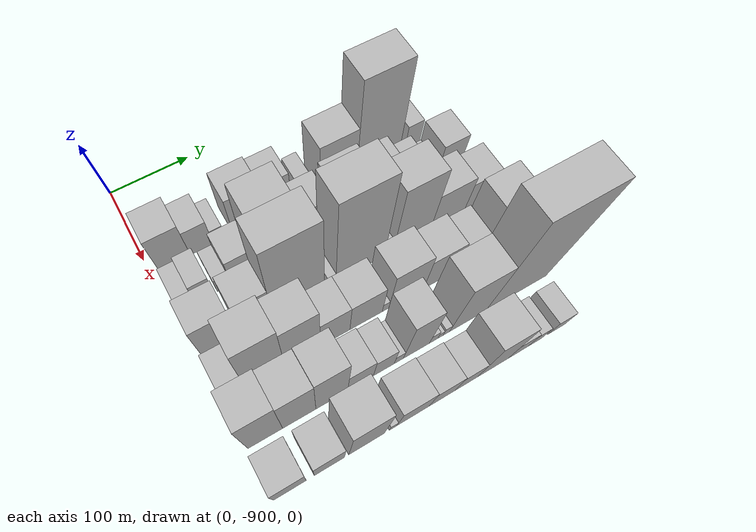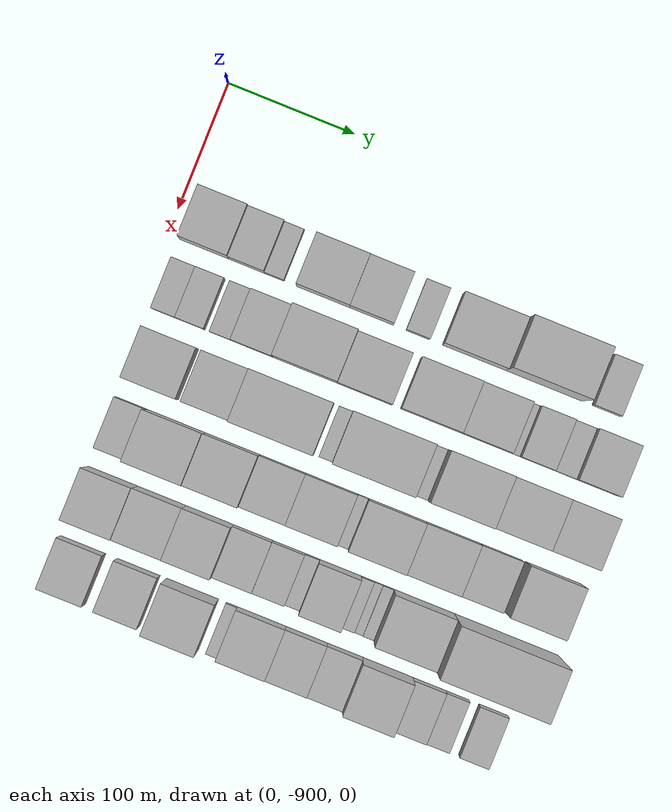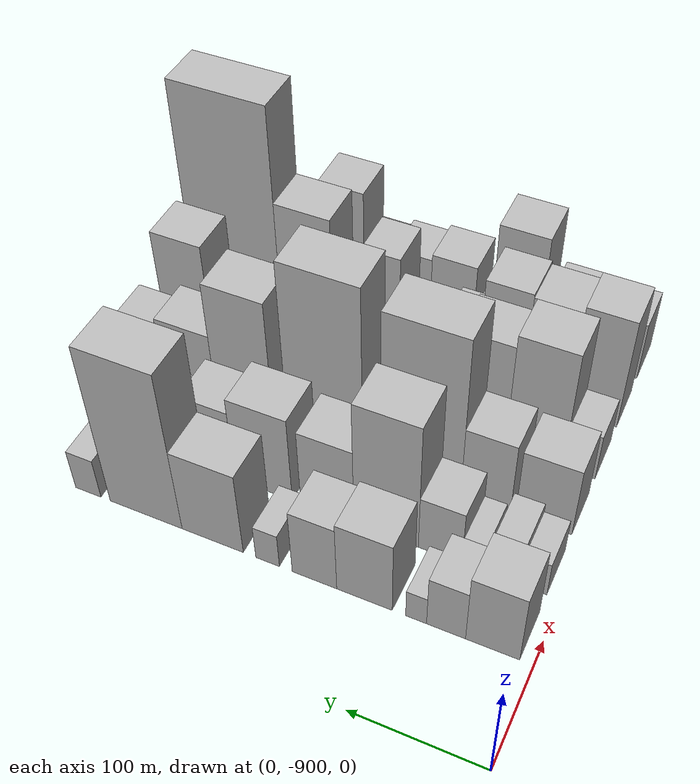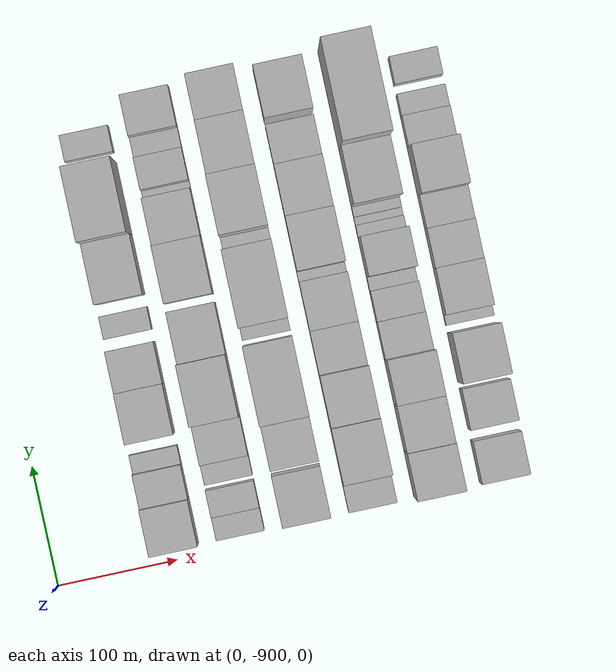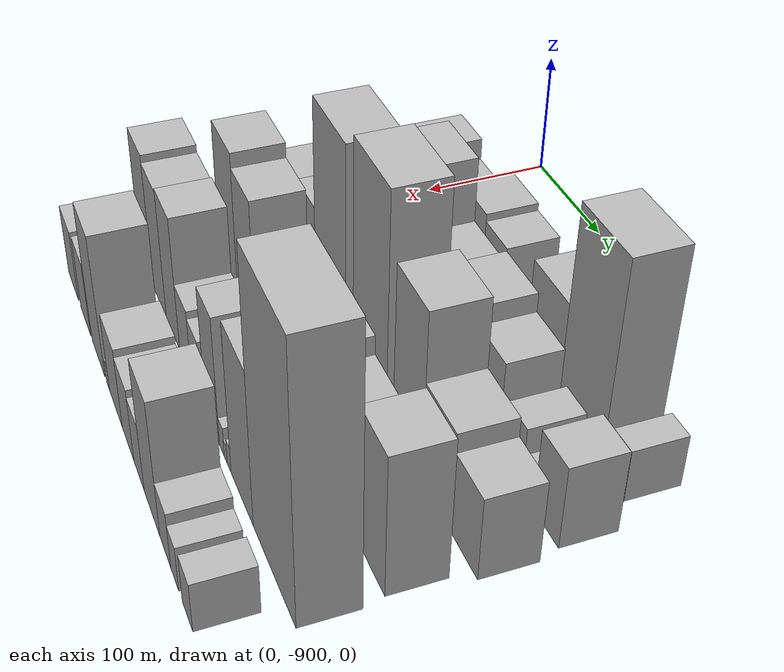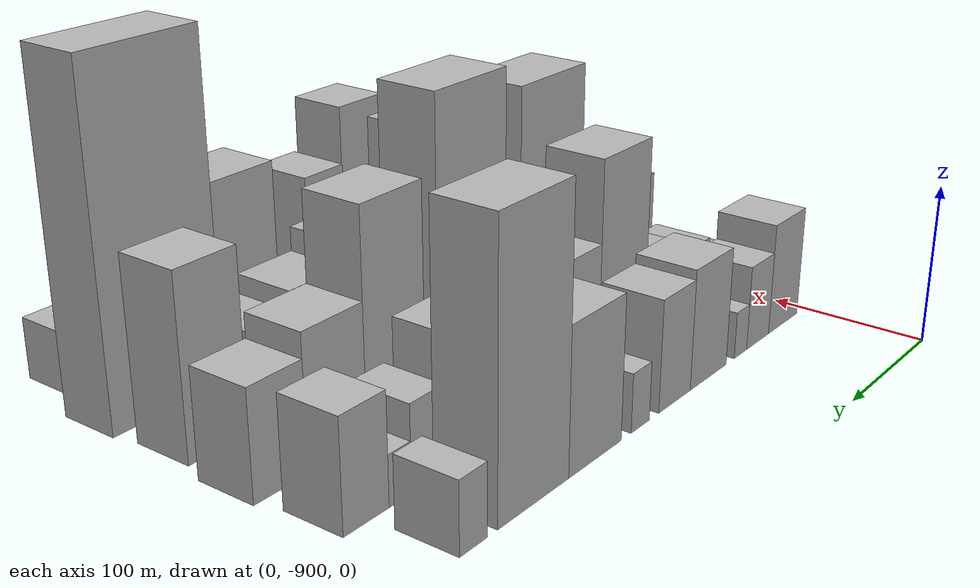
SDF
<sdf version="1.6">
 <world name="default">
  <model name="building_1">
   <static>1</static>
   <pose>100.0000 -870.6648 0 0.000000 0.000000 0.000000</pose>
   <link name="link">
    <pose>0 0 36.00 0 0 0</pose>
    <collision name="collision"><geometry><box><size>40.0000 38.6703 72.0000</size></box></geometry></collision>
    <visual name="visual">
     <cast_shadows>0</cast_shadows>
     <geometry><box><size>40.0000 38.6703 72.0000</size></box></geometry>
     <material>
      <script>
       <uri>model://HANNAS_wall/materials/scripts</uri>
       <uri>model://HANNAS_wall/materials/textures</uri>
       <name>vrc/HANNAS_wall</name>
      </script>
     </material>
    </visual>
   </link>
  </model>
  <model name="building_2">
   <static>1</static>
   <pose>100.0000 -837.1453 0 0.000000 0.000000 0.000000</pose>
   <link name="link">
    <pose>0 0 27.00 0 0 0</pose>
    <collision name="collision"><geometry><box><size>40.0000 28.3688 54.0000</size></box></geometry></collision>
    <visual name="visual">
     <cast_shadows>0</cast_shadows>
     <geometry><box><size>40.0000 28.3688 54.0000</size></box></geometry>
     <material>
      <script>
       <uri>model://HANNAS_wall/materials/scripts</uri>
       <uri>model://HANNAS_wall/materials/textures</uri>
       <name>vrc/HANNAS_wall</name>
      </script>
     </material>
    </visual>
   </link>
  </model>
  <model name="building_3">
   <static>1</static>
   <pose>100.0000 -815.2428 0 0.000000 0.000000 0.000000</pose>
   <link name="link">
    <pose>0 0 15.00 0 0 0</pose>
    <collision name="collision"><geometry><box><size>40.0000 15.4361 30.0000</size></box></geometry></collision>
    <visual name="visual">
     <cast_shadows>0</cast_shadows>
     <geometry><box><size>40.0000 15.4361 30.0000</size></box></geometry>
     <material>
      <script>
       <uri>model://HANNAS_wall/materials/scripts</uri>
       <uri>model://HANNAS_wall/materials/textures</uri>
       <name>vrc/HANNAS_wall</name>
      </script>
     </material>
    </visual>
   </link>
  </model>
  <model name="building_4">
   <static>1</static>
   <pose>100.0000 -776.5197 0 0.000000 0.000000 0.000000</pose>
   <link name="link">
    <pose>0 0 37.50 0 0 0</pose>
    <collision name="collision"><geometry><box><size>40.0000 42.0102 75.0000</size></box></geometry></collision>
    <visual name="visual">
     <cast_shadows>0</cast_shadows>
     <geometry><box><size>40.0000 42.0102 75.0000</size></box></geometry>
     <material>
      <script>
       <uri>model://HANNAS_wall/materials/scripts</uri>
       <uri>model://HANNAS_wall/materials/textures</uri>
       <name>vrc/HANNAS_wall</name>
      </script>
     </material>
    </visual>
   </link>
  </model>
  <model name="building_5">
   <static>1</static>
   <pose>100.0000 -738.2272 0 0.000000 0.000000 0.000000</pose>
   <link name="link">
    <pose>0 0 34.50 0 0 0</pose>
    <collision name="collision"><geometry><box><size>40.0000 34.5749 69.0000</size></box></geometry></collision>
    <visual name="visual">
     <cast_shadows>0</cast_shadows>
     <geometry><box><size>40.0000 34.5749 69.0000</size></box></geometry>
     <material>
      <script>
       <uri>model://HANNAS_wall/materials/scripts</uri>
       <uri>model://HANNAS_wall/materials/textures</uri>
       <name>vrc/HANNAS_wall</name>
      </script>
     </material>
    </visual>
   </link>
  </model>
  <model name="building_6">
   <static>1</static>
   <pose>100.0000 -701.5456 0 0.000000 0.000000 0.000000</pose>
   <link name="link">
    <pose>0 0 18.00 0 0 0</pose>
    <collision name="collision"><geometry><box><size>40.0000 18.7882 36.0000</size></box></geometry></collision>
    <visual name="visual">
     <cast_shadows>0</cast_shadows>
     <geometry><box><size>40.0000 18.7882 36.0000</size></box></geometry>
     <material>
      <script>
       <uri>model://HANNAS_wall/materials/scripts</uri>
       <uri>model://HANNAS_wall/materials/textures</uri>
       <name>vrc/HANNAS_wall</name>
      </script>
     </material>
    </visual>
   </link>
  </model>
  <model name="building_7">
   <static>1</static>
   <pose>100.0000 -657.1755 0 0.000000 0.000000 0.000000</pose>
   <link name="link">
    <pose>0 0 43.50 0 0 0</pose>
    <collision name="collision"><geometry><box><size>40.0000 49.9519 87.0000</size></box></geometry></collision>
    <visual name="visual">
     <cast_shadows>0</cast_shadows>
     <geometry><box><size>40.0000 49.9519 87.0000</size></box></geometry>
     <material>
      <script>
       <uri>model://HANNAS_wall/materials/scripts</uri>
       <uri>model://HANNAS_wall/materials/textures</uri>
       <name>vrc/HANNAS_wall</name>
      </script>
     </material>
    </visual>
   </link>
  </model>
  <model name="building_8">
   <static>1</static>
   <pose>100.0000 -601.8384 0 0.000000 0.000000 0.000000</pose>
   <link name="link">
    <pose>0 0 82.50 0 0 0</pose>
    <collision name="collision"><geometry><box><size>40.0000 60.7224 165.0000</size></box></geometry></collision>
    <visual name="visual">
     <cast_shadows>0</cast_shadows>
     <geometry><box><size>40.0000 60.7224 165.0000</size></box></geometry>
     <material>
      <script>
       <uri>model://HANNAS_wall/materials/scripts</uri>
       <uri>model://HANNAS_wall/materials/textures</uri>
       <name>vrc/HANNAS_wall</name>
      </script>
     </material>
    </visual>
   </link>
  </model>
  <model name="building_9">
   <static>1</static>
   <pose>100.0000 -552.5471 0 0.000000 0.000000 0.000000</pose>
   <link name="link">
    <pose>0 0 21.00 0 0 0</pose>
    <collision name="collision"><geometry><box><size>40.0000 21.8601 42.0000</size></box></geometry></collision>
    <visual name="visual">
     <cast_shadows>0</cast_shadows>
     <geometry><box><size>40.0000 21.8601 42.0000</size></box></geometry>
     <material>
      <script>
       <uri>model://HANNAS_wall/materials/scripts</uri>
       <uri>model://HANNAS_wall/materials/textures</uri>
       <name>vrc/HANNAS_wall</name>
      </script>
     </material>
    </visual>
   </link>
  </model>
  <model name="building_54">
   <static>1</static>
   <pose>155.0000 -880.3482 0 0.000000 0.000000 0.000000</pose>
   <link name="link">
    <pose>0 0 18.00 0 0 0</pose>
    <collision name="collision"><geometry><box><size>40.0000 19.3035 36.0000</size></box></geometry></collision>
    <visual name="visual">
     <cast_shadows>0</cast_shadows>
     <geometry><box><size>40.0000 19.3035 36.0000</size></box></geometry>
     <material>
      <script>
       <uri>model://HANNAS_wall/materials/scripts</uri>
       <uri>model://HANNAS_wall/materials/textures</uri>
       <name>vrc/HANNAS_wall</name>
      </script>
     </material>
    </visual>
   </link>
  </model>
  <model name="building_55">
   <static>1</static>
   <pose>155.0000 -859.4224 0 0.000000 0.000000 0.000000</pose>
   <link name="link">
    <pose>0 0 22.50 0 0 0</pose>
    <collision name="collision"><geometry><box><size>40.0000 22.5482 45.0000</size></box></geometry></collision>
    <visual name="visual">
     <cast_shadows>0</cast_shadows>
     <geometry><box><size>40.0000 22.5482 45.0000</size></box></geometry>
     <material>
      <script>
       <uri>model://HANNAS_wall/materials/scripts</uri>
       <uri>model://HANNAS_wall/materials/textures</uri>
       <name>vrc/HANNAS_wall</name>
      </script>
     </material>
    </visual>
   </link>
  </model>
  <model name="building_56">
   <static>1</static>
   <pose>155.0000 -835.6119 0 0.000000 0.000000 0.000000</pose>
   <link name="link">
    <pose>0 0 15.00 0 0 0</pose>
    <collision name="collision"><geometry><box><size>40.0000 17.0728 30.0000</size></box></geometry></collision>
    <visual name="visual">
     <cast_shadows>0</cast_shadows>
     <geometry><box><size>40.0000 17.0728 30.0000</size></box></geometry>
     <material>
      <script>
       <uri>model://HANNAS_wall/materials/scripts</uri>
       <uri>model://HANNAS_wall/materials/textures</uri>
       <name>vrc/HANNAS_wall</name>
      </script>
     </material>
    </visual>
   </link>
  </model>
  <model name="building_57">
   <static>1</static>
   <pose>155.0000 -810.3334 0 0.000000 0.000000 0.000000</pose>
   <link name="link">
    <pose>0 0 28.50 0 0 0</pose>
    <collision name="collision"><geometry><box><size>40.0000 33.4842 57.0000</size></box></geometry></collision>
    <visual name="visual">
     <cast_shadows>0</cast_shadows>
     <geometry><box><size>40.0000 33.4842 57.0000</size></box></geometry>
     <material>
      <script>
       <uri>model://HANNAS_wall/materials/scripts</uri>
       <uri>model://HANNAS_wall/materials/textures</uri>
       <name>vrc/HANNAS_wall</name>
      </script>
     </material>
    </visual>
   </link>
  </model>
  <model name="building_58">
   <static>1</static>
   <pose>155.0000 -768.3361 0 0.000000 0.000000 0.000000</pose>
   <link name="link">
    <pose>0 0 66.00 0 0 0</pose>
    <collision name="collision"><geometry><box><size>40.0000 50.5103 132.0000</size></box></geometry></collision>
    <visual name="visual">
     <cast_shadows>0</cast_shadows>
     <geometry><box><size>40.0000 50.5103 132.0000</size></box></geometry>
     <material>
      <script>
       <uri>model://HANNAS_wall/materials/scripts</uri>
       <uri>model://HANNAS_wall/materials/textures</uri>
       <name>vrc/HANNAS_wall</name>
      </script>
     </material>
    </visual>
   </link>
  </model>
  <model name="building_59">
   <static>1</static>
   <pose>155.0000 -721.6624 0 0.000000 0.000000 0.000000</pose>
   <link name="link">
    <pose>0 0 40.50 0 0 0</pose>
    <collision name="collision"><geometry><box><size>40.0000 42.8372 81.0000</size></box></geometry></collision>
    <visual name="visual">
     <cast_shadows>0</cast_shadows>
     <geometry><box><size>40.0000 42.8372 81.0000</size></box></geometry>
     <material>
      <script>
       <uri>model://HANNAS_wall/materials/scripts</uri>
       <uri>model://HANNAS_wall/materials/textures</uri>
       <name>vrc/HANNAS_wall</name>
      </script>
     </material>
    </visual>
   </link>
  </model>
  <model name="building_60">
   <static>1</static>
   <pose>155.0000 -669.4740 0 0.000000 0.000000 0.000000</pose>
   <link name="link">
    <pose>0 0 45.00 0 0 0</pose>
    <collision name="collision"><geometry><box><size>40.0000 47.5394 90.0000</size></box></geometry></collision>
    <visual name="visual">
     <cast_shadows>0</cast_shadows>
     <geometry><box><size>40.0000 47.5394 90.0000</size></box></geometry>
     <material>
      <script>
       <uri>model://HANNAS_wall/materials/scripts</uri>
       <uri>model://HANNAS_wall/materials/textures</uri>
       <name>vrc/HANNAS_wall</name>
      </script>
     </material>
    </visual>
   </link>
  </model>
  <model name="building_61">
   <static>1</static>
   <pose>155.0000 -625.9835 0 0.000000 0.000000 0.000000</pose>
   <link name="link">
    <pose>0 0 37.50 0 0 0</pose>
    <collision name="collision"><geometry><box><size>40.0000 39.4417 75.0000</size></box></geometry></collision>
    <visual name="visual">
     <cast_shadows>0</cast_shadows>
     <geometry><box><size>40.0000 39.4417 75.0000</size></box></geometry>
     <material>
      <script>
       <uri>model://HANNAS_wall/materials/scripts</uri>
       <uri>model://HANNAS_wall/materials/textures</uri>
       <name>vrc/HANNAS_wall</name>
      </script>
     </material>
    </visual>
   </link>
  </model>
  <model name="building_62">
   <static>1</static>
   <pose>155.0000 -602.6160 0 0.000000 0.000000 0.000000</pose>
   <link name="link">
    <pose>0 0 7.50 0 0 0</pose>
    <collision name="collision"><geometry><box><size>40.0000 7.2933 15.0000</size></box></geometry></collision>
    <visual name="visual">
     <cast_shadows>0</cast_shadows>
     <geometry><box><size>40.0000 7.2933 15.0000</size></box></geometry>
     <material>
      <script>
       <uri>model://HANNAS_wall/materials/scripts</uri>
       <uri>model://HANNAS_wall/materials/textures</uri>
       <name>vrc/HANNAS_wall</name>
      </script>
     </material>
    </visual>
   </link>
  </model>
  <model name="building_63">
   <static>1</static>
   <pose>155.0000 -585.5089 0 0.000000 0.000000 0.000000</pose>
   <link name="link">
    <pose>0 0 25.50 0 0 0</pose>
    <collision name="collision"><geometry><box><size>40.0000 26.9209 51.0000</size></box></geometry></collision>
    <visual name="visual">
     <cast_shadows>0</cast_shadows>
     <geometry><box><size>40.0000 26.9209 51.0000</size></box></geometry>
     <material>
      <script>
       <uri>model://HANNAS_wall/materials/scripts</uri>
       <uri>model://HANNAS_wall/materials/textures</uri>
       <name>vrc/HANNAS_wall</name>
      </script>
     </material>
    </visual>
   </link>
  </model>
  <model name="building_64">
   <static>1</static>
   <pose>155.0000 -563.4656 0 0.000000 0.000000 0.000000</pose>
   <link name="link">
    <pose>0 0 15.00 0 0 0</pose>
    <collision name="collision"><geometry><box><size>40.0000 17.1657 30.0000</size></box></geometry></collision>
    <visual name="visual">
     <cast_shadows>0</cast_shadows>
     <geometry><box><size>40.0000 17.1657 30.0000</size></box></geometry>
     <material>
      <script>
       <uri>model://HANNAS_wall/materials/scripts</uri>
       <uri>model://HANNAS_wall/materials/textures</uri>
       <name>vrc/HANNAS_wall</name>
      </script>
     </material>
    </visual>
   </link>
  </model>
  <model name="building_65">
   <static>1</static>
   <pose>155.0000 -537.9696 0 0.000000 0.000000 0.000000</pose>
   <link name="link">
    <pose>0 0 33.00 0 0 0</pose>
    <collision name="collision"><geometry><box><size>40.0000 33.8264 66.0000</size></box></geometry></collision>
    <visual name="visual">
     <cast_shadows>0</cast_shadows>
     <geometry><box><size>40.0000 33.8264 66.0000</size></box></geometry>
     <material>
      <script>
       <uri>model://HANNAS_wall/materials/scripts</uri>
       <uri>model://HANNAS_wall/materials/textures</uri>
       <name>vrc/HANNAS_wall</name>
      </script>
     </material>
    </visual>
   </link>
  </model>
  <model name="building_105">
   <static>1</static>
   <pose>210.0000 -868.5339 0 0.000000 0.000000 0.000000</pose>
   <link name="link">
    <pose>0 0 36.00 0 0 0</pose>
    <collision name="collision"><geometry><box><size>40.0000 42.9322 72.0000</size></box></geometry></collision>
    <visual name="visual">
     <cast_shadows>0</cast_shadows>
     <geometry><box><size>40.0000 42.9322 72.0000</size></box></geometry>
     <material>
      <script>
       <uri>model://HANNAS_wall/materials/scripts</uri>
       <uri>model://HANNAS_wall/materials/textures</uri>
       <name>vrc/HANNAS_wall</name>
      </script>
     </material>
    </visual>
   </link>
  </model>
  <model name="building_106">
   <static>1</static>
   <pose>210.0000 -823.6438 0 0.000000 0.000000 0.000000</pose>
   <link name="link">
    <pose>0 0 37.50 0 0 0</pose>
    <collision name="collision"><geometry><box><size>40.0000 38.8481 75.0000</size></box></geometry></collision>
    <visual name="visual">
     <cast_shadows>0</cast_shadows>
     <geometry><box><size>40.0000 38.8481 75.0000</size></box></geometry>
     <material>
      <script>
       <uri>model://HANNAS_wall/materials/scripts</uri>
       <uri>model://HANNAS_wall/materials/textures</uri>
       <name>vrc/HANNAS_wall</name>
      </script>
     </material>
    </visual>
   </link>
  </model>
  <model name="building_107">
   <static>1</static>
   <pose>210.0000 -771.9527 0 0.000000 0.000000 0.000000</pose>
   <link name="link">
    <pose>0 0 82.50 0 0 0</pose>
    <collision name="collision"><geometry><box><size>40.0000 64.5341 165.0000</size></box></geometry></collision>
    <visual name="visual">
     <cast_shadows>0</cast_shadows>
     <geometry><box><size>40.0000 64.5341 165.0000</size></box></geometry>
     <material>
      <script>
       <uri>model://HANNAS_wall/materials/scripts</uri>
       <uri>model://HANNAS_wall/materials/textures</uri>
       <name>vrc/HANNAS_wall</name>
      </script>
     </material>
    </visual>
   </link>
  </model>
  <model name="building_108">
   <static>1</static>
   <pose>210.0000 -730.3385 0 0.000000 0.000000 0.000000</pose>
   <link name="link">
    <pose>0 0 12.00 0 0 0</pose>
    <collision name="collision"><geometry><box><size>40.0000 10.6944 24.0000</size></box></geometry></collision>
    <visual name="visual">
     <cast_shadows>0</cast_shadows>
     <geometry><box><size>40.0000 10.6944 24.0000</size></box></geometry>
     <material>
      <script>
       <uri>model://HANNAS_wall/materials/scripts</uri>
       <uri>model://HANNAS_wall/materials/textures</uri>
       <name>vrc/HANNAS_wall</name>
      </script>
     </material>
    </visual>
   </link>
  </model>
  <model name="building_109">
   <static>1</static>
   <pose>210.0000 -693.4231 0 0.000000 0.000000 0.000000</pose>
   <link name="link">
    <pose>0 0 90.00 0 0 0</pose>
    <collision name="collision"><geometry><box><size>40.0000 63.1364 180.0000</size></box></geometry></collision>
    <visual name="visual">
     <cast_shadows>0</cast_shadows>
     <geometry><box><size>40.0000 63.1364 180.0000</size></box></geometry>
     <material>
      <script>
       <uri>model://HANNAS_wall/materials/scripts</uri>
       <uri>model://HANNAS_wall/materials/textures</uri>
       <name>vrc/HANNAS_wall</name>
      </script>
     </material>
    </visual>
   </link>
  </model>
  <model name="building_110">
   <static>1</static>
   <pose>210.0000 -655.8809 0 0.000000 0.000000 0.000000</pose>
   <link name="link">
    <pose>0 0 13.50 0 0 0</pose>
    <collision name="collision"><geometry><box><size>40.0000 11.9479 27.0000</size></box></geometry></collision>
    <visual name="visual">
     <cast_shadows>0</cast_shadows>
     <geometry><box><size>40.0000 11.9479 27.0000</size></box></geometry>
     <material>
      <script>
       <uri>model://HANNAS_wall/materials/scripts</uri>
       <uri>model://HANNAS_wall/materials/textures</uri>
       <name>vrc/HANNAS_wall</name>
      </script>
     </material>
    </visual>
   </link>
  </model>
  <model name="building_111">
   <static>1</static>
   <pose>210.0000 -625.1830 0 0.000000 0.000000 0.000000</pose>
   <link name="link">
    <pose>0 0 67.50 0 0 0</pose>
    <collision name="collision"><geometry><box><size>40.0000 49.4479 135.0000</size></box></geometry></collision>
    <visual name="visual">
     <cast_shadows>0</cast_shadows>
     <geometry><box><size>40.0000 49.4479 135.0000</size></box></geometry>
     <material>
      <script>
       <uri>model://HANNAS_wall/materials/scripts</uri>
       <uri>model://HANNAS_wall/materials/textures</uri>
       <name>vrc/HANNAS_wall</name>
      </script>
     </material>
    </visual>
   </link>
  </model>
  <model name="building_112">
   <static>1</static>
   <pose>210.0000 -577.4104 0 0.000000 0.000000 0.000000</pose>
   <link name="link">
    <pose>0 0 40.50 0 0 0</pose>
    <collision name="collision"><geometry><box><size>40.0000 46.0974 81.0000</size></box></geometry></collision>
    <visual name="visual">
     <cast_shadows>0</cast_shadows>
     <geometry><box><size>40.0000 46.0974 81.0000</size></box></geometry>
     <material>
      <script>
       <uri>model://HANNAS_wall/materials/scripts</uri>
       <uri>model://HANNAS_wall/materials/textures</uri>
       <name>vrc/HANNAS_wall</name>
      </script>
     </material>
    </visual>
   </link>
  </model>
  <model name="building_113">
   <static>1</static>
   <pose>210.0000 -534.8703 0 0.000000 0.000000 0.000000</pose>
   <link name="link">
    <pose>0 0 33.00 0 0 0</pose>
    <collision name="collision"><geometry><box><size>40.0000 38.9829 66.0000</size></box></geometry></collision>
    <visual name="visual">
     <cast_shadows>0</cast_shadows>
     <geometry><box><size>40.0000 38.9829 66.0000</size></box></geometry>
     <material>
      <script>
       <uri>model://HANNAS_wall/materials/scripts</uri>
       <uri>model://HANNAS_wall/materials/textures</uri>
       <name>vrc/HANNAS_wall</name>
      </script>
     </material>
    </visual>
   </link>
  </model>
  <model name="building_156">
   <static>1</static>
   <pose>265.0000 -877.4227 0 0.000000 0.000000 0.000000</pose>
   <link name="link">
    <pose>0 0 24.00 0 0 0</pose>
    <collision name="collision"><geometry><box><size>40.0000 25.1546 48.0000</size></box></geometry></collision>
    <visual name="visual">
     <cast_shadows>0</cast_shadows>
     <geometry><box><size>40.0000 25.1546 48.0000</size></box></geometry>
     <material>
      <script>
       <uri>model://HANNAS_wall/materials/scripts</uri>
       <uri>model://HANNAS_wall/materials/textures</uri>
       <name>vrc/HANNAS_wall</name>
      </script>
     </material>
    </visual>
   </link>
  </model>
  <model name="building_157">
   <static>1</static>
   <pose>265.0000 -841.7374 0 0.000000 0.000000 0.000000</pose>
   <link name="link">
    <pose>0 0 61.50 0 0 0</pose>
    <collision name="collision"><geometry><box><size>40.0000 46.2159 123.0000</size></box></geometry></collision>
    <visual name="visual">
     <cast_shadows>0</cast_shadows>
     <geometry><box><size>40.0000 46.2159 123.0000</size></box></geometry>
     <material>
      <script>
       <uri>model://HANNAS_wall/materials/scripts</uri>
       <uri>model://HANNAS_wall/materials/textures</uri>
       <name>vrc/HANNAS_wall</name>
      </script>
     </material>
    </visual>
   </link>
  </model>
  <model name="building_158">
   <static>1</static>
   <pose>265.0000 -797.2499 0 0.000000 0.000000 0.000000</pose>
   <link name="link">
    <pose>0 0 55.50 0 0 0</pose>
    <collision name="collision"><geometry><box><size>40.0000 42.7590 111.0000</size></box></geometry></collision>
    <visual name="visual">
     <cast_shadows>0</cast_shadows>
     <geometry><box><size>40.0000 42.7590 111.0000</size></box></geometry>
     <material>
      <script>
       <uri>model://HANNAS_wall/materials/scripts</uri>
       <uri>model://HANNAS_wall/materials/textures</uri>
       <name>vrc/HANNAS_wall</name>
      </script>
     </material>
    </visual>
   </link>
  </model>
  <model name="building_159">
   <static>1</static>
   <pose>265.0000 -757.8090 0 0.000000 0.000000 0.000000</pose>
   <link name="link">
    <pose>0 0 34.50 0 0 0</pose>
    <collision name="collision"><geometry><box><size>40.0000 36.1227 69.0000</size></box></geometry></collision>
    <visual name="visual">
     <cast_shadows>0</cast_shadows>
     <geometry><box><size>40.0000 36.1227 69.0000</size></box></geometry>
     <material>
      <script>
       <uri>model://HANNAS_wall/materials/scripts</uri>
       <uri>model://HANNAS_wall/materials/textures</uri>
       <name>vrc/HANNAS_wall</name>
      </script>
     </material>
    </visual>
   </link>
  </model>
  <model name="building_160">
   <static>1</static>
   <pose>265.0000 -719.3179 0 0.000000 0.000000 0.000000</pose>
   <link name="link">
    <pose>0 0 34.50 0 0 0</pose>
    <collision name="collision"><geometry><box><size>40.0000 40.8595 69.0000</size></box></geometry></collision>
    <visual name="visual">
     <cast_shadows>0</cast_shadows>
     <geometry><box><size>40.0000 40.8595 69.0000</size></box></geometry>
     <material>
      <script>
       <uri>model://HANNAS_wall/materials/scripts</uri>
       <uri>model://HANNAS_wall/materials/textures</uri>
       <name>vrc/HANNAS_wall</name>
      </script>
     </material>
    </visual>
   </link>
  </model>
  <model name="building_161">
   <static>1</static>
   <pose>265.0000 -694.6205 0 0.000000 0.000000 0.000000</pose>
   <link name="link">
    <pose>0 0 10.50 0 0 0</pose>
    <collision name="collision"><geometry><box><size>40.0000 8.5354 21.0000</size></box></geometry></collision>
    <visual name="visual">
     <cast_shadows>0</cast_shadows>
     <geometry><box><size>40.0000 8.5354 21.0000</size></box></geometry>
     <material>
      <script>
       <uri>model://HANNAS_wall/materials/scripts</uri>
       <uri>model://HANNAS_wall/materials/textures</uri>
       <name>vrc/HANNAS_wall</name>
      </script>
     </material>
    </visual>
   </link>
  </model>
  <model name="building_162">
   <static>1</static>
   <pose>265.0000 -667.6787 0 0.000000 0.000000 0.000000</pose>
   <link name="link">
    <pose>0 0 43.50 0 0 0</pose>
    <collision name="collision"><geometry><box><size>40.0000 45.3482 87.0000</size></box></geometry></collision>
    <visual name="visual">
     <cast_shadows>0</cast_shadows>
     <geometry><box><size>40.0000 45.3482 87.0000</size></box></geometry>
     <material>
      <script>
       <uri>model://HANNAS_wall/materials/scripts</uri>
       <uri>model://HANNAS_wall/materials/textures</uri>
       <name>vrc/HANNAS_wall</name>
      </script>
     </material>
    </visual>
   </link>
  </model>
  <model name="building_163">
   <static>1</static>
   <pose>265.0000 -623.5282 0 0.000000 0.000000 0.000000</pose>
   <link name="link">
    <pose>0 0 36.00 0 0 0</pose>
    <collision name="collision"><geometry><box><size>40.0000 42.9528 72.0000</size></box></geometry></collision>
    <visual name="visual">
     <cast_shadows>0</cast_shadows>
     <geometry><box><size>40.0000 42.9528 72.0000</size></box></geometry>
     <material>
      <script>
       <uri>model://HANNAS_wall/materials/scripts</uri>
       <uri>model://HANNAS_wall/materials/textures</uri>
       <name>vrc/HANNAS_wall</name>
      </script>
     </material>
    </visual>
   </link>
  </model>
  <model name="building_164">
   <static>1</static>
   <pose>265.0000 -585.5137 0 0.000000 0.000000 0.000000</pose>
   <link name="link">
    <pose>0 0 30.00 0 0 0</pose>
    <collision name="collision"><geometry><box><size>40.0000 33.0763 60.0000</size></box></geometry></collision>
    <visual name="visual">
     <cast_shadows>0</cast_shadows>
     <geometry><box><size>40.0000 33.0763 60.0000</size></box></geometry>
     <material>
      <script>
       <uri>model://HANNAS_wall/materials/scripts</uri>
       <uri>model://HANNAS_wall/materials/textures</uri>
       <name>vrc/HANNAS_wall</name>
      </script>
     </material>
    </visual>
   </link>
  </model>
  <model name="building_165">
   <static>1</static>
   <pose>265.0000 -544.1558 0 0.000000 0.000000 0.000000</pose>
   <link name="link">
    <pose>0 0 55.50 0 0 0</pose>
    <collision name="collision"><geometry><box><size>40.0000 43.6395 111.0000</size></box></geometry></collision>
    <visual name="visual">
     <cast_shadows>0</cast_shadows>
     <geometry><box><size>40.0000 43.6395 111.0000</size></box></geometry>
     <material>
      <script>
       <uri>model://HANNAS_wall/materials/scripts</uri>
       <uri>model://HANNAS_wall/materials/textures</uri>
       <name>vrc/HANNAS_wall</name>
      </script>
     </material>
    </visual>
   </link>
  </model>
  <model name="building_210">
   <static>1</static>
   <pose>320.0000 -870.4950 0 0.000000 0.000000 0.000000</pose>
   <link name="link">
    <pose>0 0 57.00 0 0 0</pose>
    <collision name="collision"><geometry><box><size>40.0000 39.0099 114.0000</size></box></geometry></collision>
    <visual name="visual">
     <cast_shadows>0</cast_shadows>
     <geometry><box><size>40.0000 39.0099 114.0000</size></box></geometry>
     <material>
      <script>
       <uri>model://HANNAS_wall/materials/scripts</uri>
       <uri>model://HANNAS_wall/materials/textures</uri>
       <name>vrc/HANNAS_wall</name>
      </script>
     </material>
    </visual>
   </link>
  </model>
  <model name="building_211">
   <static>1</static>
   <pose>320.0000 -831.7220 0 0.000000 0.000000 0.000000</pose>
   <link name="link">
    <pose>0 0 54.00 0 0 0</pose>
    <collision name="collision"><geometry><box><size>40.0000 38.5361 108.0000</size></box></geometry></collision>
    <visual name="visual">
     <cast_shadows>0</cast_shadows>
     <geometry><box><size>40.0000 38.5361 108.0000</size></box></geometry>
     <material>
      <script>
       <uri>model://HANNAS_wall/materials/scripts</uri>
       <uri>model://HANNAS_wall/materials/textures</uri>
       <name>vrc/HANNAS_wall</name>
      </script>
     </material>
    </visual>
   </link>
  </model>
  <model name="building_212">
   <static>1</static>
   <pose>320.0000 -793.6879 0 0.000000 0.000000 0.000000</pose>
   <link name="link">
    <pose>0 0 55.50 0 0 0</pose>
    <collision name="collision"><geometry><box><size>40.0000 37.5320 111.0000</size></box></geometry></collision>
    <visual name="visual">
     <cast_shadows>0</cast_shadows>
     <geometry><box><size>40.0000 37.5320 111.0000</size></box></geometry>
     <material>
      <script>
       <uri>model://HANNAS_wall/materials/scripts</uri>
       <uri>model://HANNAS_wall/materials/textures</uri>
       <name>vrc/HANNAS_wall</name>
      </script>
     </material>
    </visual>
   </link>
  </model>
  <model name="building_213">
   <static>1</static>
   <pose>320.0000 -759.3783 0 0.000000 0.000000 0.000000</pose>
   <link name="link">
    <pose>0 0 28.50 0 0 0</pose>
    <collision name="collision"><geometry><box><size>40.0000 31.0873 57.0000</size></box></geometry></collision>
    <visual name="visual">
     <cast_shadows>0</cast_shadows>
     <geometry><box><size>40.0000 31.0873 57.0000</size></box></geometry>
     <material>
      <script>
       <uri>model://HANNAS_wall/materials/scripts</uri>
       <uri>model://HANNAS_wall/materials/textures</uri>
       <name>vrc/HANNAS_wall</name>
      </script>
     </material>
    </visual>
   </link>
  </model>
  <model name="building_214">
   <static>1</static>
   <pose>320.0000 -731.0581 0 0.000000 0.000000 0.000000</pose>
   <link name="link">
    <pose>0 0 25.50 0 0 0</pose>
    <collision name="collision"><geometry><box><size>40.0000 25.5530 51.0000</size></box></geometry></collision>
    <visual name="visual">
     <cast_shadows>0</cast_shadows>
     <geometry><box><size>40.0000 25.5530 51.0000</size></box></geometry>
     <material>
      <script>
       <uri>model://HANNAS_wall/materials/scripts</uri>
       <uri>model://HANNAS_wall/materials/textures</uri>
       <name>vrc/HANNAS_wall</name>
      </script>
     </material>
    </visual>
   </link>
  </model>
  <model name="building_215">
   <static>1</static>
   <pose>320.0000 -712.4866 0 0.000000 0.000000 0.000000</pose>
   <link name="link">
    <pose>0 0 12.00 0 0 0</pose>
    <collision name="collision"><geometry><box><size>40.0000 11.5900 24.0000</size></box></geometry></collision>
    <visual name="visual">
     <cast_shadows>0</cast_shadows>
     <geometry><box><size>40.0000 11.5900 24.0000</size></box></geometry>
     <material>
      <script>
       <uri>model://HANNAS_wall/materials/scripts</uri>
       <uri>model://HANNAS_wall/materials/textures</uri>
       <name>vrc/HANNAS_wall</name>
      </script>
     </material>
    </visual>
   </link>
  </model>
  <model name="building_216">
   <static>1</static>
   <pose>320.0000 -690.3030 0 0.000000 0.000000 0.000000</pose>
   <link name="link">
    <pose>0 0 52.50 0 0 0</pose>
    <collision name="collision"><geometry><box><size>40.0000 32.7771 105.0000</size></box></geometry></collision>
    <visual name="visual">
     <cast_shadows>0</cast_shadows>
     <geometry><box><size>40.0000 32.7771 105.0000</size></box></geometry>
     <material>
      <script>
       <uri>model://HANNAS_wall/materials/scripts</uri>
       <uri>model://HANNAS_wall/materials/textures</uri>
       <name>vrc/HANNAS_wall</name>
      </script>
     </material>
    </visual>
   </link>
  </model>
  <model name="building_217">
   <static>1</static>
   <pose>320.0000 -668.6185 0 0.000000 0.000000 0.000000</pose>
   <link name="link">
    <pose>0 0 12.00 0 0 0</pose>
    <collision name="collision"><geometry><box><size>40.0000 10.5919 24.0000</size></box></geometry></collision>
    <visual name="visual">
     <cast_shadows>0</cast_shadows>
     <geometry><box><size>40.0000 10.5919 24.0000</size></box></geometry>
     <material>
      <script>
       <uri>model://HANNAS_wall/materials/scripts</uri>
       <uri>model://HANNAS_wall/materials/textures</uri>
       <name>vrc/HANNAS_wall</name>
      </script>
     </material>
    </visual>
   </link>
  </model>
  <model name="building_218">
   <static>1</static>
   <pose>320.0000 -659.9207 0 0.000000 0.000000 0.000000</pose>
   <link name="link">
    <pose>0 0 7.50 0 0 0</pose>
    <collision name="collision"><geometry><box><size>40.0000 6.8039 15.0000</size></box></geometry></collision>
    <visual name="visual">
     <cast_shadows>0</cast_shadows>
     <geometry><box><size>40.0000 6.8039 15.0000</size></box></geometry>
     <material>
      <script>
       <uri>model://HANNAS_wall/materials/scripts</uri>
       <uri>model://HANNAS_wall/materials/textures</uri>
       <name>vrc/HANNAS_wall</name>
      </script>
     </material>
    </visual>
   </link>
  </model>
  <model name="building_219">
   <static>1</static>
   <pose>320.0000 -652.2776 0 0.000000 0.000000 0.000000</pose>
   <link name="link">
    <pose>0 0 10.50 0 0 0</pose>
    <collision name="collision"><geometry><box><size>40.0000 8.4822 21.0000</size></box></geometry></collision>
    <visual name="visual">
     <cast_shadows>0</cast_shadows>
     <geometry><box><size>40.0000 8.4822 21.0000</size></box></geometry>
     <material>
      <script>
       <uri>model://HANNAS_wall/materials/scripts</uri>
       <uri>model://HANNAS_wall/materials/textures</uri>
       <name>vrc/HANNAS_wall</name>
      </script>
     </material>
    </visual>
   </link>
  </model>
  <model name="building_220">
   <static>1</static>
   <pose>320.0000 -624.1591 0 0.000000 0.000000 0.000000</pose>
   <link name="link">
    <pose>0 0 61.50 0 0 0</pose>
    <collision name="collision"><geometry><box><size>40.0000 47.7548 123.0000</size></box></geometry></collision>
    <visual name="visual">
     <cast_shadows>0</cast_shadows>
     <geometry><box><size>40.0000 47.7548 123.0000</size></box></geometry>
     <material>
      <script>
       <uri>model://HANNAS_wall/materials/scripts</uri>
       <uri>model://HANNAS_wall/materials/textures</uri>
       <name>vrc/HANNAS_wall</name>
      </script>
     </material>
    </visual>
   </link>
  </model>
  <model name="building_221">
   <static>1</static>
   <pose>320.0000 -559.1890 0 0.000000 0.000000 0.000000</pose>
   <link name="link">
    <pose>0 0 106.50 0 0 0</pose>
    <collision name="collision"><geometry><box><size>40.0000 82.1852 213.0000</size></box></geometry></collision>
    <visual name="visual">
     <cast_shadows>0</cast_shadows>
     <geometry><box><size>40.0000 82.1852 213.0000</size></box></geometry>
     <material>
      <script>
       <uri>model://HANNAS_wall/materials/scripts</uri>
       <uri>model://HANNAS_wall/materials/textures</uri>
       <name>vrc/HANNAS_wall</name>
      </script>
     </material>
    </visual>
   </link>
  </model>
  <model name="building_260">
   <static>1</static>
   <pose>375.0000 -872.1279 0 0.000000 0.000000 0.000000</pose>
   <link name="link">
    <pose>0 0 30.00 0 0 0</pose>
    <collision name="collision"><geometry><box><size>40.0000 35.7441 60.0000</size></box></geometry></collision>
    <visual name="visual">
     <cast_shadows>0</cast_shadows>
     <geometry><box><size>40.0000 35.7441 60.0000</size></box></geometry>
     <material>
      <script>
       <uri>model://HANNAS_wall/materials/scripts</uri>
       <uri>model://HANNAS_wall/materials/textures</uri>
       <name>vrc/HANNAS_wall</name>
      </script>
     </material>
    </visual>
   </link>
  </model>
  <model name="building_261">
   <static>1</static>
   <pose>375.0000 -828.1869 0 0.000000 0.000000 0.000000</pose>
   <link name="link">
    <pose>0 0 31.50 0 0 0</pose>
    <collision name="collision"><geometry><box><size>40.0000 34.1381 63.0000</size></box></geometry></collision>
    <visual name="visual">
     <cast_shadows>0</cast_shadows>
     <geometry><box><size>40.0000 34.1381 63.0000</size></box></geometry>
     <material>
      <script>
       <uri>model://HANNAS_wall/materials/scripts</uri>
       <uri>model://HANNAS_wall/materials/textures</uri>
       <name>vrc/HANNAS_wall</name>
      </script>
     </material>
    </visual>
   </link>
  </model>
  <model name="building_262">
   <static>1</static>
   <pose>375.0000 -785.4167 0 0.000000 0.000000 0.000000</pose>
   <link name="link">
    <pose>0 0 58.50 0 0 0</pose>
    <collision name="collision"><geometry><box><size>40.0000 41.4022 117.0000</size></box></geometry></collision>
    <visual name="visual">
     <cast_shadows>0</cast_shadows>
     <geometry><box><size>40.0000 41.4022 117.0000</size></box></geometry>
     <material>
      <script>
       <uri>model://HANNAS_wall/materials/scripts</uri>
       <uri>model://HANNAS_wall/materials/textures</uri>
       <name>vrc/HANNAS_wall</name>
      </script>
     </material>
    </visual>
   </link>
  </model>
  <model name="building_263">
   <static>1</static>
   <pose>375.0000 -754.3395 0 0.000000 0.000000 0.000000</pose>
   <link name="link">
    <pose>0 0 10.50 0 0 0</pose>
    <collision name="collision"><geometry><box><size>40.0000 8.7523 21.0000</size></box></geometry></collision>
    <visual name="visual">
     <cast_shadows>0</cast_shadows>
     <geometry><box><size>40.0000 8.7523 21.0000</size></box></geometry>
     <material>
      <script>
       <uri>model://HANNAS_wall/materials/scripts</uri>
       <uri>model://HANNAS_wall/materials/textures</uri>
       <name>vrc/HANNAS_wall</name>
      </script>
     </material>
    </visual>
   </link>
  </model>
  <model name="building_264">
   <static>1</static>
   <pose>375.0000 -730.6059 0 0.000000 0.000000 0.000000</pose>
   <link name="link">
    <pose>0 0 33.00 0 0 0</pose>
    <collision name="collision"><geometry><box><size>40.0000 38.7148 66.0000</size></box></geometry></collision>
    <visual name="visual">
     <cast_shadows>0</cast_shadows>
     <geometry><box><size>40.0000 38.7148 66.0000</size></box></geometry>
     <material>
      <script>
       <uri>model://HANNAS_wall/materials/scripts</uri>
       <uri>model://HANNAS_wall/materials/textures</uri>
       <name>vrc/HANNAS_wall</name>
      </script>
     </material>
    </visual>
   </link>
  </model>
  <model name="building_265">
   <static>1</static>
   <pose>375.0000 -694.8406 0 0.000000 0.000000 0.000000</pose>
   <link name="link">
    <pose>0 0 30.00 0 0 0</pose>
    <collision name="collision"><geometry><box><size>40.0000 32.8158 60.0000</size></box></geometry></collision>
    <visual name="visual">
     <cast_shadows>0</cast_shadows>
     <geometry><box><size>40.0000 32.8158 60.0000</size></box></geometry>
     <material>
      <script>
       <uri>model://HANNAS_wall/materials/scripts</uri>
       <uri>model://HANNAS_wall/materials/textures</uri>
       <name>vrc/HANNAS_wall</name>
      </script>
     </material>
    </visual>
   </link>
  </model>
  <model name="building_266">
   <static>1</static>
   <pose>375.0000 -664.5506 0 0.000000 0.000000 0.000000</pose>
   <link name="link">
    <pose>0 0 27.00 0 0 0</pose>
    <collision name="collision"><geometry><box><size>40.0000 27.7642 54.0000</size></box></geometry></collision>
    <visual name="visual">
     <cast_shadows>0</cast_shadows>
     <geometry><box><size>40.0000 27.7642 54.0000</size></box></geometry>
     <material>
      <script>
       <uri>model://HANNAS_wall/materials/scripts</uri>
       <uri>model://HANNAS_wall/materials/textures</uri>
       <name>vrc/HANNAS_wall</name>
      </script>
     </material>
    </visual>
   </link>
  </model>
  <model name="building_267">
   <static>1</static>
   <pose>375.0000 -630.7259 0 0.000000 0.000000 0.000000</pose>
   <link name="link">
    <pose>0 0 54.00 0 0 0</pose>
    <collision name="collision"><geometry><box><size>40.0000 39.8852 108.0000</size></box></geometry></collision>
    <visual name="visual">
     <cast_shadows>0</cast_shadows>
     <geometry><box><size>40.0000 39.8852 108.0000</size></box></geometry>
     <material>
      <script>
       <uri>model://HANNAS_wall/materials/scripts</uri>
       <uri>model://HANNAS_wall/materials/textures</uri>
       <name>vrc/HANNAS_wall</name>
      </script>
     </material>
    </visual>
   </link>
  </model>
  <model name="building_268">
   <static>1</static>
   <pose>375.0000 -597.7356 0 0.000000 0.000000 0.000000</pose>
   <link name="link">
    <pose>0 0 22.50 0 0 0</pose>
    <collision name="collision"><geometry><box><size>40.0000 26.0955 45.0000</size></box></geometry></collision>
    <visual name="visual">
     <cast_shadows>0</cast_shadows>
     <geometry><box><size>40.0000 26.0955 45.0000</size></box></geometry>
     <material>
      <script>
       <uri>model://HANNAS_wall/materials/scripts</uri>
       <uri>model://HANNAS_wall/materials/textures</uri>
       <name>vrc/HANNAS_wall</name>
      </script>
     </material>
    </visual>
   </link>
  </model>
  <model name="building_269">
   <static>1</static>
   <pose>375.0000 -575.5751 0 0.000000 0.000000 0.000000</pose>
   <link name="link">
    <pose>0 0 18.00 0 0 0</pose>
    <collision name="collision"><geometry><box><size>40.0000 18.2255 36.0000</size></box></geometry></collision>
    <visual name="visual">
     <cast_shadows>0</cast_shadows>
     <geometry><box><size>40.0000 18.2255 36.0000</size></box></geometry>
     <material>
      <script>
       <uri>model://HANNAS_wall/materials/scripts</uri>
       <uri>model://HANNAS_wall/materials/textures</uri>
       <name>vrc/HANNAS_wall</name>
      </script>
     </material>
    </visual>
   </link>
  </model>
  <model name="building_270">
   <static>1</static>
   <pose>375.0000 -546.9882 0 0.000000 0.000000 0.000000</pose>
   <link name="link">
    <pose>0 0 19.50 0 0 0</pose>
    <collision name="collision"><geometry><box><size>40.0000 22.9484 39.0000</size></box></geometry></collision>
    <visual name="visual">
     <cast_shadows>0</cast_shadows>
     <geometry><box><size>40.0000 22.9484 39.0000</size></box></geometry>
     <material>
      <script>
       <uri>model://HANNAS_wall/materials/scripts</uri>
       <uri>model://HANNAS_wall/materials/textures</uri>
       <name>vrc/HANNAS_wall</name>
      </script>
     </material>
    </visual>
   </link>
  </model>
 </world>
</sdf>
